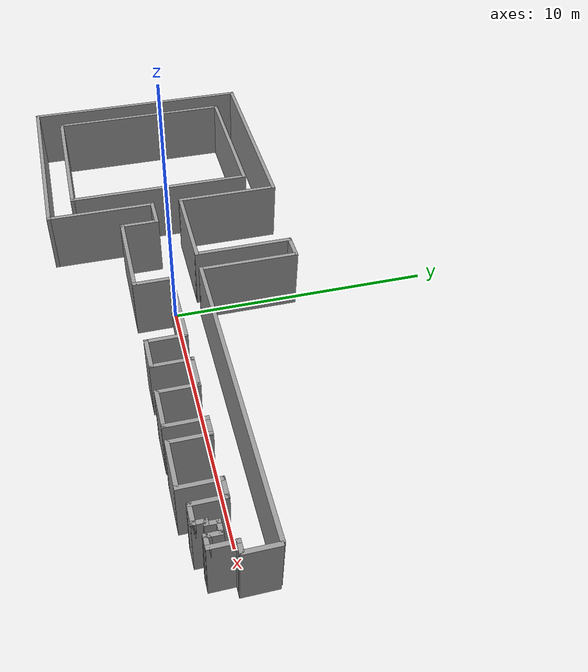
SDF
<?xml version='1.0'?>
<sdf version='1.7'>
  <model name='key'>
    <pose>-0.049318 0.329736 0 0 -0 0</pose>
    <link name='Wall_0'>
      <collision name='Wall_0_Collision'>
        <geometry>
          <box>
            <size>5.75 0.15 2.5</size>
          </box>
        </geometry>
        <pose>0 0 1.25 0 -0 0</pose>
      </collision>
      <visual name='Wall_0_Visual'>
        <pose>0 0 1.25 0 -0 0</pose>
        <geometry>
          <box>
            <size>5.75 0.15 2.5</size>
          </box>
        </geometry>
        <material>
          <script>
            <uri>file://media/materials/scripts/gazebo.material</uri>
            <name>Gazebo/Grey</name>
          </script>
          <ambient>1 1 1 1</ambient>
        </material>
        <meta>
          <layer>0</layer>
        </meta>
      </visual>
      <pose>-7.69068 -3.53974 0 0 -0 3.14159</pose>
    </link>
    <link name='Wall_1'>
      <collision name='Wall_1_Collision'>
        <geometry>
          <box>
            <size>7.25 0.15 2.5</size>
          </box>
        </geometry>
        <pose>0 0 1.25 0 -0 0</pose>
      </collision>
      <visual name='Wall_1_Visual'>
        <pose>0 0 1.25 0 -0 0</pose>
        <geometry>
          <box>
            <size>7.25 0.15 2.5</size>
          </box>
        </geometry>
        <material>
          <script>
            <uri>file://media/materials/scripts/gazebo.material</uri>
            <name>Gazebo/Grey</name>
          </script>
          <ambient>1 1 1 1</ambient>
        </material>
        <meta>
          <layer>0</layer>
        </meta>
      </visual>
      <pose>-10.4907 0.010264 0 0 -0 1.5708</pose>
    </link>
    <link name='Wall_10'>
      <collision name='Wall_10_Collision'>
        <geometry>
          <box>
            <size>4 0.15 2.5</size>
          </box>
        </geometry>
        <pose>0 0 1.25 0 -0 0</pose>
      </collision>
      <visual name='Wall_10_Visual'>
        <pose>0 0 1.25 0 -0 0</pose>
        <geometry>
          <box>
            <size>4 0.15 2.5</size>
          </box>
        </geometry>
        <material>
          <script>
            <uri>file://media/materials/scripts/gazebo.material</uri>
            <name>Gazebo/Grey</name>
          </script>
          <ambient>1 1 1 1</ambient>
        </material>
        <meta>
          <layer>0</layer>
        </meta>
      </visual>
      <pose>-3.9 2.625 0 0 -0 -1.5708</pose>
    </link>
    <link name='Wall_11'>
      <collision name='Wall_11_Collision'>
        <geometry>
          <box>
            <size>3.5 0.15 2.5</size>
          </box>
        </geometry>
        <pose>0 0 1.25 0 -0 0</pose>
      </collision>
      <visual name='Wall_11_Visual'>
        <pose>0 0 1.25 0 -0 0</pose>
        <geometry>
          <box>
            <size>3.5 0.15 2.5</size>
          </box>
        </geometry>
        <material>
          <script>
            <uri>file://media/materials/scripts/gazebo.material</uri>
            <name>Gazebo/Grey</name>
          </script>
          <ambient>1 1 1 1</ambient>
        </material>
        <meta>
          <layer>0</layer>
        </meta>
      </visual>
      <pose>-2.225 0.7 0 0 -0 0</pose>
    </link>
    <link name='Wall_12'>
      <collision name='Wall_12_Collision'>
        <geometry>
          <box>
            <size>3.75 0.15 2.5</size>
          </box>
        </geometry>
        <pose>0 0 1.25 0 -0 0</pose>
      </collision>
      <visual name='Wall_12_Visual'>
        <pose>0 0 1.25 0 -0 0</pose>
        <geometry>
          <box>
            <size>3.75 0.15 2.5</size>
          </box>
        </geometry>
        <material>
          <script>
            <uri>file://media/materials/scripts/gazebo.material</uri>
            <name>Gazebo/Grey</name>
          </script>
          <ambient>1 1 1 1</ambient>
        </material>
        <meta>
          <layer>0</layer>
        </meta>
      </visual>
      <pose>-0.55 2.5 0 0 -0 1.5708</pose>
    </link>
    <link name='Wall_15'>
      <collision name='Wall_15_Collision'>
        <geometry>
          <box>
            <size>1 0.15 2.5</size>
          </box>
        </geometry>
        <pose>0 0 1.25 0 -0 0</pose>
      </collision>
      <visual name='Wall_15_Visual'>
        <pose>0 0 1.25 0 -0 0</pose>
        <geometry>
          <box>
            <size>1 0.15 2.5</size>
          </box>
        </geometry>
        <material>
          <script>
            <uri>file://media/materials/scripts/gazebo.material</uri>
            <name>Gazebo/Grey</name>
          </script>
          <ambient>1 1 1 1</ambient>
        </material>
        <meta>
          <layer>0</layer>
        </meta>
      </visual>
      <pose>-0.125 4.3 0 0 -0 0</pose>
    </link>
    <link name='Wall_16'>
      <collision name='Wall_16_Collision'>
        <geometry>
          <box>
            <size>3.75 0.15 2.5</size>
          </box>
        </geometry>
        <pose>0 0 1.25 0 -0 0</pose>
      </collision>
      <visual name='Wall_16_Visual'>
        <pose>0 0 1.25 0 -0 0</pose>
        <geometry>
          <box>
            <size>3.75 0.15 2.5</size>
          </box>
        </geometry>
        <material>
          <script>
            <uri>file://media/materials/scripts/gazebo.material</uri>
            <name>Gazebo/Grey</name>
          </script>
          <ambient>1 1 1 1</ambient>
        </material>
        <meta>
          <layer>0</layer>
        </meta>
      </visual>
      <pose>0.3 2.5 0 0 -0 -1.5708</pose>
    </link>
    <link name='Wall_17'>
      <collision name='Wall_17_Collision'>
        <geometry>
          <box>
            <size>11.25 0.15 2.5</size>
          </box>
        </geometry>
        <pose>0 0 1.25 0 -0 0</pose>
      </collision>
      <visual name='Wall_17_Visual'>
        <pose>0 0 1.25 0 -0 0</pose>
        <geometry>
          <box>
            <size>11.25 0.15 2.5</size>
          </box>
        </geometry>
        <material>
          <script>
            <uri>file://media/materials/scripts/gazebo.material</uri>
            <name>Gazebo/Grey</name>
          </script>
          <ambient>1 1 1 1</ambient>
        </material>
        <meta>
          <layer>0</layer>
        </meta>
      </visual>
      <pose>5.85 0.7 0 0 -0 0</pose>
    </link>
    <link name='Wall_19'>
      <collision name='Wall_19_Collision'>
        <geometry>
          <box>
            <size>1.25 0.15 2.5</size>
          </box>
        </geometry>
        <pose>0 0 1.25 0 -0 0</pose>
      </collision>
      <visual name='Wall_19_Visual'>
        <pose>0 0 1.25 0 -0 0</pose>
        <geometry>
          <box>
            <size>1.25 0.15 2.5</size>
          </box>
        </geometry>
        <material>
          <script>
            <uri>file://media/materials/scripts/gazebo.material</uri>
            <name>Gazebo/Grey</name>
          </script>
          <ambient>1 1 1 1</ambient>
        </material>
        <meta>
          <layer>0</layer>
        </meta>
      </visual>
      <pose>-3.35 -0.45 0 0 -0 0</pose>
    </link>
    <link name='Wall_2'>
      <collision name='Wall_2_Collision'>
        <geometry>
          <box>
            <size>5.75 0.15 2.5</size>
          </box>
        </geometry>
        <pose>0 0 1.25 0 -0 0</pose>
      </collision>
      <visual name='Wall_2_Visual'>
        <pose>0 0 1.25 0 -0 0</pose>
        <geometry>
          <box>
            <size>5.75 0.15 2.5</size>
          </box>
        </geometry>
        <material>
          <script>
            <uri>file://media/materials/scripts/gazebo.material</uri>
            <name>Gazebo/Grey</name>
          </script>
          <ambient>1 1 1 1</ambient>
        </material>
        <meta>
          <layer>0</layer>
        </meta>
      </visual>
      <pose>-7.69068 3.56026 0 0 -0 0</pose>
    </link>
    <link name='Wall_22'>
      <collision name='Wall_22_Collision'>
        <geometry>
          <box>
            <size>1.5 0.15 2.5</size>
          </box>
        </geometry>
        <pose>0 0 1.25 0 -0 0</pose>
      </collision>
      <visual name='Wall_22_Visual'>
        <pose>0 0 1.25 0 -0 0</pose>
        <geometry>
          <box>
            <size>1.5 0.15 2.5</size>
          </box>
        </geometry>
        <material>
          <script>
            <uri>file://media/materials/scripts/gazebo.material</uri>
            <name>Gazebo/Grey</name>
          </script>
          <ambient>1 1 1 1</ambient>
        </material>
        <meta>
          <layer>0</layer>
        </meta>
      </visual>
      <pose>-2.8 -1.125 0 0 -0 -1.5708</pose>
    </link>
    <link name='Wall_23'>
      <collision name='Wall_23_Collision'>
        <geometry>
          <box>
            <size>3.5 0.15 2.5</size>
          </box>
        </geometry>
        <pose>0 0 1.25 0 -0 0</pose>
      </collision>
      <visual name='Wall_23_Visual'>
        <pose>0 0 1.25 0 -0 0</pose>
        <geometry>
          <box>
            <size>3.5 0.15 2.5</size>
          </box>
        </geometry>
        <material>
          <script>
            <uri>file://media/materials/scripts/gazebo.material</uri>
            <name>Gazebo/Grey</name>
          </script>
          <ambient>1 1 1 1</ambient>
        </material>
        <meta>
          <layer>0</layer>
        </meta>
      </visual>
      <pose>-1.125 -1.8 0 0 -0 0</pose>
    </link>
    <link name='Wall_24'>
      <collision name='Wall_24_Collision'>
        <geometry>
          <box>
            <size>1.5 0.15 2.5</size>
          </box>
        </geometry>
        <pose>0 0 1.25 0 -0 0</pose>
      </collision>
      <visual name='Wall_24_Visual'>
        <pose>0 0 1.25 0 -0 0</pose>
        <geometry>
          <box>
            <size>1.5 0.15 2.5</size>
          </box>
        </geometry>
        <material>
          <script>
            <uri>file://media/materials/scripts/gazebo.material</uri>
            <name>Gazebo/Grey</name>
          </script>
          <ambient>1 1 1 1</ambient>
        </material>
        <meta>
          <layer>0</layer>
        </meta>
      </visual>
      <pose>0.55 -1.125 0 0 -0 1.5708</pose>
    </link>
    <link name='Wall_25'>
      <collision name='Wall_25_Collision'>
        <geometry>
          <box>
            <size>3 0.15 2.5</size>
          </box>
        </geometry>
        <pose>0 0 1.25 0 -0 0</pose>
      </collision>
      <visual name='Wall_25_Visual'>
        <pose>0 0 1.25 0 -0 0</pose>
        <geometry>
          <box>
            <size>3 0.15 2.5</size>
          </box>
        </geometry>
        <material>
          <script>
            <uri>file://media/materials/scripts/gazebo.material</uri>
            <name>Gazebo/Grey</name>
          </script>
          <ambient>1 1 1 1</ambient>
        </material>
        <meta>
          <layer>0</layer>
        </meta>
      </visual>
      <pose>1.975 -0.45 0 0 -0 0</pose>
    </link>
    <link name='Wall_26'>
      <collision name='Wall_26_Collision'>
        <geometry>
          <box>
            <size>1.5 0.15 2.5</size>
          </box>
        </geometry>
        <pose>0 0 1.25 0 -0 0</pose>
      </collision>
      <visual name='Wall_26_Visual'>
        <pose>0 0 1.25 0 -0 0</pose>
        <geometry>
          <box>
            <size>1.5 0.15 2.5</size>
          </box>
        </geometry>
        <material>
          <script>
            <uri>file://media/materials/scripts/gazebo.material</uri>
            <name>Gazebo/Grey</name>
          </script>
          <ambient>1 1 1 1</ambient>
        </material>
        <meta>
          <layer>0</layer>
        </meta>
      </visual>
      <pose>3.4 -1.125 0 0 -0 -1.5708</pose>
    </link>
    <link name='Wall_27'>
      <collision name='Wall_27_Collision'>
        <geometry>
          <box>
            <size>1.25 0.15 2.5</size>
          </box>
        </geometry>
        <pose>0 0 1.25 0 -0 0</pose>
      </collision>
      <visual name='Wall_27_Visual'>
        <pose>0 0 1.25 0 -0 0</pose>
        <geometry>
          <box>
            <size>1.25 0.15 2.5</size>
          </box>
        </geometry>
        <material>
          <script>
            <uri>file://media/materials/scripts/gazebo.material</uri>
            <name>Gazebo/Grey</name>
          </script>
          <ambient>1 1 1 1</ambient>
        </material>
        <meta>
          <layer>0</layer>
        </meta>
      </visual>
      <pose>3.95 -1.8 0 0 -0 0</pose>
    </link>
    <link name='Wall_28'>
      <collision name='Wall_28_Collision'>
        <geometry>
          <box>
            <size>1.5 0.15 2.5</size>
          </box>
        </geometry>
        <pose>0 0 1.25 0 -0 0</pose>
      </collision>
      <visual name='Wall_28_Visual'>
        <pose>0 0 1.25 0 -0 0</pose>
        <geometry>
          <box>
            <size>1.5 0.15 2.5</size>
          </box>
        </geometry>
        <material>
          <script>
            <uri>file://media/materials/scripts/gazebo.material</uri>
            <name>Gazebo/Grey</name>
          </script>
          <ambient>1 1 1 1</ambient>
        </material>
        <meta>
          <layer>0</layer>
        </meta>
      </visual>
      <pose>4.5 -1.125 0 0 -0 1.5708</pose>
    </link>
    <link name='Wall_29'>
      <collision name='Wall_29_Collision'>
        <geometry>
          <box>
            <size>1.25 0.15 2.5</size>
          </box>
        </geometry>
        <pose>0 0 1.25 0 -0 0</pose>
      </collision>
      <visual name='Wall_29_Visual'>
        <pose>0 0 1.25 0 -0 0</pose>
        <geometry>
          <box>
            <size>1.25 0.15 2.5</size>
          </box>
        </geometry>
        <material>
          <script>
            <uri>file://media/materials/scripts/gazebo.material</uri>
            <name>Gazebo/Grey</name>
          </script>
          <ambient>1 1 1 1</ambient>
        </material>
        <meta>
          <layer>0</layer>
        </meta>
      </visual>
      <pose>5.05 -0.45 0 0 -0 0</pose>
    </link>
    <link name='Wall_3'>
      <collision name='Wall_3_Collision'>
        <geometry>
          <box>
            <size>7.25 0.15 2.5</size>
          </box>
        </geometry>
        <pose>0 0 1.25 0 -0 0</pose>
      </collision>
      <visual name='Wall_3_Visual'>
        <pose>0 0 1.25 0 -0 0</pose>
        <geometry>
          <box>
            <size>7.25 0.15 2.5</size>
          </box>
        </geometry>
        <material>
          <script>
            <uri>file://media/materials/scripts/gazebo.material</uri>
            <name>Gazebo/Grey</name>
          </script>
          <ambient>1 1 1 1</ambient>
        </material>
        <meta>
          <layer>0</layer>
        </meta>
      </visual>
      <pose>-4.89068 0.010264 0 0 -0 -1.5708</pose>
    </link>
    <link name='Wall_33'>
      <collision name='Wall_33_Collision'>
        <geometry>
          <box>
            <size>1.5 0.15 2.5</size>
          </box>
        </geometry>
        <pose>0 0 1.25 0 -0 0</pose>
      </collision>
      <visual name='Wall_33_Visual'>
        <pose>0 0 1.25 0 -0 0</pose>
        <geometry>
          <box>
            <size>1.5 0.15 2.5</size>
          </box>
        </geometry>
        <material>
          <script>
            <uri>file://media/materials/scripts/gazebo.material</uri>
            <name>Gazebo/Grey</name>
          </script>
          <ambient>1 1 1 1</ambient>
        </material>
        <meta>
          <layer>0</layer>
        </meta>
      </visual>
      <pose>5.6 -1.125 0 0 -0 -1.5708</pose>
    </link>
    <link name='Wall_34'>
      <collision name='Wall_34_Collision'>
        <geometry>
          <box>
            <size>1.5 0.15 2.5</size>
          </box>
        </geometry>
        <pose>0 0 1.25 0 -0 0</pose>
      </collision>
      <visual name='Wall_34_Visual'>
        <pose>0 0 1.25 0 -0 0</pose>
        <geometry>
          <box>
            <size>1.5 0.15 2.5</size>
          </box>
        </geometry>
        <material>
          <script>
            <uri>file://media/materials/scripts/gazebo.material</uri>
            <name>Gazebo/Grey</name>
          </script>
          <ambient>1 1 1 1</ambient>
        </material>
        <meta>
          <layer>0</layer>
        </meta>
      </visual>
      <pose>6.275 -1.8 0 0 -0 0</pose>
    </link>
    <link name='Wall_35'>
      <collision name='Wall_35_Collision'>
        <geometry>
          <box>
            <size>1.5 0.15 2.5</size>
          </box>
        </geometry>
        <pose>0 0 1.25 0 -0 0</pose>
      </collision>
      <visual name='Wall_35_Visual'>
        <pose>0 0 1.25 0 -0 0</pose>
        <geometry>
          <box>
            <size>1.5 0.15 2.5</size>
          </box>
        </geometry>
        <material>
          <script>
            <uri>file://media/materials/scripts/gazebo.material</uri>
            <name>Gazebo/Grey</name>
          </script>
          <ambient>1 1 1 1</ambient>
        </material>
        <meta>
          <layer>0</layer>
        </meta>
      </visual>
      <pose>6.95 -1.125 0 0 -0 1.5708</pose>
    </link>
    <link name='Wall_36'>
      <collision name='Wall_36_Collision'>
        <geometry>
          <box>
            <size>0.75 0.15 2.5</size>
          </box>
        </geometry>
        <pose>0 0 1.25 0 -0 0</pose>
      </collision>
      <visual name='Wall_36_Visual'>
        <pose>0 0 1.25 0 -0 0</pose>
        <geometry>
          <box>
            <size>0.75 0.15 2.5</size>
          </box>
        </geometry>
        <material>
          <script>
            <uri>file://media/materials/scripts/gazebo.material</uri>
            <name>Gazebo/Grey</name>
          </script>
          <ambient>1 1 1 1</ambient>
        </material>
        <meta>
          <layer>0</layer>
        </meta>
      </visual>
      <pose>7.25 -0.45 0 0 -0 0</pose>
    </link>
    <link name='Wall_37'>
      <collision name='Wall_37_Collision'>
        <geometry>
          <box>
            <size>1.5 0.15 2.5</size>
          </box>
        </geometry>
        <pose>0 0 1.25 0 -0 0</pose>
      </collision>
      <visual name='Wall_37_Visual'>
        <pose>0 0 1.25 0 -0 0</pose>
        <geometry>
          <box>
            <size>1.5 0.15 2.5</size>
          </box>
        </geometry>
        <material>
          <script>
            <uri>file://media/materials/scripts/gazebo.material</uri>
            <name>Gazebo/Grey</name>
          </script>
          <ambient>1 1 1 1</ambient>
        </material>
        <meta>
          <layer>0</layer>
        </meta>
      </visual>
      <pose>7.55 -1.125 0 0 -0 -1.5708</pose>
    </link>
    <link name='Wall_38'>
      <collision name='Wall_38_Collision'>
        <geometry>
          <box>
            <size>1.75 0.15 2.5</size>
          </box>
        </geometry>
        <pose>0 0 1.25 0 -0 0</pose>
      </collision>
      <visual name='Wall_38_Visual'>
        <pose>0 0 1.25 0 -0 0</pose>
        <geometry>
          <box>
            <size>1.75 0.15 2.5</size>
          </box>
        </geometry>
        <material>
          <script>
            <uri>file://media/materials/scripts/gazebo.material</uri>
            <name>Gazebo/Grey</name>
          </script>
          <ambient>1 1 1 1</ambient>
        </material>
        <meta>
          <layer>0</layer>
        </meta>
      </visual>
      <pose>8.35 -1.8 0 0 -0 0</pose>
    </link>
    <link name='Wall_39'>
      <collision name='Wall_39_Collision'>
        <geometry>
          <box>
            <size>1.5 0.15 2.5</size>
          </box>
        </geometry>
        <pose>0 0 1.25 0 -0 0</pose>
      </collision>
      <visual name='Wall_39_Visual'>
        <pose>0 0 1.25 0 -0 0</pose>
        <geometry>
          <box>
            <size>1.5 0.15 2.5</size>
          </box>
        </geometry>
        <material>
          <script>
            <uri>file://media/materials/scripts/gazebo.material</uri>
            <name>Gazebo/Grey</name>
          </script>
          <ambient>1 1 1 1</ambient>
        </material>
        <meta>
          <layer>0</layer>
        </meta>
      </visual>
      <pose>9.15 -1.125 0 0 -0 1.5708</pose>
    </link>
    <link name='Wall_40'>
      <collision name='Wall_40_Collision'>
        <geometry>
          <box>
            <size>0.75 0.15 2.5</size>
          </box>
        </geometry>
        <pose>0 0 1.25 0 -0 0</pose>
      </collision>
      <visual name='Wall_40_Visual'>
        <pose>0 0 1.25 0 -0 0</pose>
        <geometry>
          <box>
            <size>0.75 0.15 2.5</size>
          </box>
        </geometry>
        <material>
          <script>
            <uri>file://media/materials/scripts/gazebo.material</uri>
            <name>Gazebo/Grey</name>
          </script>
          <ambient>1 1 1 1</ambient>
        </material>
        <meta>
          <layer>0</layer>
        </meta>
      </visual>
      <pose>9.45 -0.45 0 0 -0 0</pose>
    </link>
    <link name='Wall_41'>
      <collision name='Wall_41_Collision'>
        <geometry>
          <box>
            <size>1.25 0.15 2.5</size>
          </box>
        </geometry>
        <pose>0 0 1.25 0 -0 0</pose>
      </collision>
      <visual name='Wall_41_Visual'>
        <pose>0 0 1.25 0 -0 0</pose>
        <geometry>
          <box>
            <size>1.25 0.15 2.5</size>
          </box>
        </geometry>
        <material>
          <script>
            <uri>file://media/materials/scripts/gazebo.material</uri>
            <name>Gazebo/Grey</name>
          </script>
          <ambient>1 1 1 1</ambient>
        </material>
        <meta>
          <layer>0</layer>
        </meta>
      </visual>
      <pose>9.75 -1 0 0 -0 -1.5708</pose>
    </link>
    <link name='Wall_42'>
      <collision name='Wall_42_Collision'>
        <geometry>
          <box>
            <size>0.75 0.15 2.5</size>
          </box>
        </geometry>
        <pose>0 0 1.25 0 -0 0</pose>
      </collision>
      <visual name='Wall_42_Visual'>
        <pose>0 0 1.25 0 -0 0</pose>
        <geometry>
          <box>
            <size>0.75 0.15 2.5</size>
          </box>
        </geometry>
        <material>
          <script>
            <uri>file://media/materials/scripts/gazebo.material</uri>
            <name>Gazebo/Grey</name>
          </script>
          <ambient>1 1 1 1</ambient>
        </material>
        <meta>
          <layer>0</layer>
        </meta>
      </visual>
      <pose>10.05 -1.55 0 0 -0 0</pose>
    </link>
    <link name='Wall_43'>
      <collision name='Wall_43_Collision'>
        <geometry>
          <box>
            <size>0.5 0.15 2.5</size>
          </box>
        </geometry>
        <pose>0 0 1.25 0 -0 0</pose>
      </collision>
      <visual name='Wall_43_Visual'>
        <pose>0 0 1.25 0 -0 0</pose>
        <geometry>
          <box>
            <size>0.5 0.15 2.5</size>
          </box>
        </geometry>
        <material>
          <script>
            <uri>file://media/materials/scripts/gazebo.material</uri>
            <name>Gazebo/Grey</name>
          </script>
          <ambient>1 1 1 1</ambient>
        </material>
        <meta>
          <layer>0</layer>
        </meta>
      </visual>
      <pose>10.35 -1.375 0 0 -0 1.5708</pose>
    </link>
    <link name='Wall_44'>
      <collision name='Wall_44_Collision'>
        <geometry>
          <box>
            <size>0.25 0.15 2.5</size>
          </box>
        </geometry>
        <pose>0 0 1.25 0 -0 0</pose>
      </collision>
      <visual name='Wall_44_Visual'>
        <pose>0 0 1.25 0 -0 0</pose>
        <geometry>
          <box>
            <size>0.25 0.15 2.5</size>
          </box>
        </geometry>
        <material>
          <script>
            <uri>file://media/materials/scripts/gazebo.material</uri>
            <name>Gazebo/Grey</name>
          </script>
          <ambient>1 1 1 1</ambient>
        </material>
        <meta>
          <layer>0</layer>
        </meta>
      </visual>
      <pose>10.4 -1.2 0 0 -0 0</pose>
    </link>
    <link name='Wall_45'>
      <collision name='Wall_45_Collision'>
        <geometry>
          <box>
            <size>0.5 0.15 2.5</size>
          </box>
        </geometry>
        <pose>0 0 1.25 0 -0 0</pose>
      </collision>
      <visual name='Wall_45_Visual'>
        <pose>0 0 1.25 0 -0 0</pose>
        <geometry>
          <box>
            <size>0.5 0.15 2.5</size>
          </box>
        </geometry>
        <material>
          <script>
            <uri>file://media/materials/scripts/gazebo.material</uri>
            <name>Gazebo/Grey</name>
          </script>
          <ambient>1 1 1 1</ambient>
        </material>
        <meta>
          <layer>0</layer>
        </meta>
      </visual>
      <pose>10.45 -1.025 0 0 -0 1.5708</pose>
    </link>
    <link name='Wall_46'>
      <collision name='Wall_46_Collision'>
        <geometry>
          <box>
            <size>0.5 0.15 2.5</size>
          </box>
        </geometry>
        <pose>0 0 1.25 0 -0 0</pose>
      </collision>
      <visual name='Wall_46_Visual'>
        <pose>0 0 1.25 0 -0 0</pose>
        <geometry>
          <box>
            <size>0.5 0.15 2.5</size>
          </box>
        </geometry>
        <material>
          <script>
            <uri>file://media/materials/scripts/gazebo.material</uri>
            <name>Gazebo/Grey</name>
          </script>
          <ambient>1 1 1 1</ambient>
        </material>
        <meta>
          <layer>0</layer>
        </meta>
      </visual>
      <pose>10.625 -0.85 0 0 -0 0</pose>
    </link>
    <link name='Wall_47'>
      <collision name='Wall_47_Collision'>
        <geometry>
          <box>
            <size>0.5 0.15 2.5</size>
          </box>
        </geometry>
        <pose>0 0 1.25 0 -0 0</pose>
      </collision>
      <visual name='Wall_47_Visual'>
        <pose>0 0 1.25 0 -0 0</pose>
        <geometry>
          <box>
            <size>0.5 0.15 2.5</size>
          </box>
        </geometry>
        <material>
          <script>
            <uri>file://media/materials/scripts/gazebo.material</uri>
            <name>Gazebo/Grey</name>
          </script>
          <ambient>1 1 1 1</ambient>
        </material>
        <meta>
          <layer>0</layer>
        </meta>
      </visual>
      <pose>10.8 -1.025 0 0 -0 -1.5708</pose>
    </link>
    <link name='Wall_48'>
      <collision name='Wall_48_Collision'>
        <geometry>
          <box>
            <size>0.25 0.15 2.5</size>
          </box>
        </geometry>
        <pose>0 0 1.25 0 -0 0</pose>
      </collision>
      <visual name='Wall_48_Visual'>
        <pose>0 0 1.25 0 -0 0</pose>
        <geometry>
          <box>
            <size>0.25 0.15 2.5</size>
          </box>
        </geometry>
        <material>
          <script>
            <uri>file://media/materials/scripts/gazebo.material</uri>
            <name>Gazebo/Grey</name>
          </script>
          <ambient>1 1 1 1</ambient>
        </material>
        <meta>
          <layer>0</layer>
        </meta>
      </visual>
      <pose>10.8 -1.25 0 0 -0 -1.5708</pose>
    </link>
    <link name='Wall_54'>
      <collision name='Wall_54_Collision'>
        <geometry>
          <box>
            <size>0.5 0.15 2.5</size>
          </box>
        </geometry>
        <pose>0 0 1.25 0 -0 0</pose>
      </collision>
      <visual name='Wall_54_Visual'>
        <pose>0 0 1.25 0 -0 0</pose>
        <geometry>
          <box>
            <size>0.5 0.15 2.5</size>
          </box>
        </geometry>
        <material>
          <script>
            <uri>file://media/materials/scripts/gazebo.material</uri>
            <name>Gazebo/Grey</name>
          </script>
          <ambient>1 1 1 1</ambient>
        </material>
        <meta>
          <layer>0</layer>
        </meta>
      </visual>
      <pose>10.975 -1.3 0 0 -0 0</pose>
    </link>
    <link name='Wall_55'>
      <collision name='Wall_55_Collision'>
        <geometry>
          <box>
            <size>1 0.15 2.5</size>
          </box>
        </geometry>
        <pose>0 0 1.25 0 -0 0</pose>
      </collision>
      <visual name='Wall_55_Visual'>
        <pose>0 0 1.25 0 -0 0</pose>
        <geometry>
          <box>
            <size>1 0.15 2.5</size>
          </box>
        </geometry>
        <material>
          <script>
            <uri>file://media/materials/scripts/gazebo.material</uri>
            <name>Gazebo/Grey</name>
          </script>
          <ambient>1 1 1 1</ambient>
        </material>
        <meta>
          <layer>0</layer>
        </meta>
      </visual>
      <pose>11.15 -0.875 0 0 -0 1.5708</pose>
    </link>
    <link name='Wall_56'>
      <collision name='Wall_56_Collision'>
        <geometry>
          <box>
            <size>0.5 0.15 2.5</size>
          </box>
        </geometry>
        <pose>0 0 1.25 0 -0 0</pose>
      </collision>
      <visual name='Wall_56_Visual'>
        <pose>0 0 1.25 0 -0 0</pose>
        <geometry>
          <box>
            <size>0.5 0.15 2.5</size>
          </box>
        </geometry>
        <material>
          <script>
            <uri>file://media/materials/scripts/gazebo.material</uri>
            <name>Gazebo/Grey</name>
          </script>
          <ambient>1 1 1 1</ambient>
        </material>
        <meta>
          <layer>0</layer>
        </meta>
      </visual>
      <pose>11.325 -0.45 0 0 -0 0</pose>
    </link>
    <link name='Wall_57'>
      <collision name='Wall_57_Collision'>
        <geometry>
          <box>
            <size>1.25 0.15 2.5</size>
          </box>
        </geometry>
        <pose>0 0 1.25 0 -0 0</pose>
      </collision>
      <visual name='Wall_57_Visual'>
        <pose>0 0 1.25 0 -0 0</pose>
        <geometry>
          <box>
            <size>1.25 0.15 2.5</size>
          </box>
        </geometry>
        <material>
          <script>
            <uri>file://media/materials/scripts/gazebo.material</uri>
            <name>Gazebo/Grey</name>
          </script>
          <ambient>1 1 1 1</ambient>
        </material>
        <meta>
          <layer>0</layer>
        </meta>
      </visual>
      <pose>11.5 0.1 0 0 -0 1.5708</pose>
    </link>
    <link name='Wall_6'>
      <collision name='Wall_6_Collision'>
        <geometry>
          <box>
            <size>4.25 0.15 2.5</size>
          </box>
        </geometry>
        <pose>0 0 1.25 0 -0 0</pose>
      </collision>
      <visual name='Wall_6_Visual'>
        <pose>0 0 1.25 0 -0 0</pose>
        <geometry>
          <box>
            <size>4.25 0.15 2.5</size>
          </box>
        </geometry>
        <material>
          <script>
            <uri>file://media/materials/scripts/gazebo.material</uri>
            <name>Gazebo/Grey</name>
          </script>
          <ambient>1 1 1 1</ambient>
        </material>
        <meta>
          <layer>0</layer>
        </meta>
      </visual>
      <pose>-3.9 -2.5 0 0 -0 -1.5708</pose>
    </link>
    <link name='Wall_7'>
      <collision name='Wall_7_Collision'>
        <geometry>
          <box>
            <size>7.75 0.15 2.5</size>
          </box>
        </geometry>
        <pose>0 0 1.25 0 -0 0</pose>
      </collision>
      <visual name='Wall_7_Visual'>
        <pose>0 0 1.25 0 -0 0</pose>
        <geometry>
          <box>
            <size>7.75 0.15 2.5</size>
          </box>
        </geometry>
        <material>
          <script>
            <uri>file://media/materials/scripts/gazebo.material</uri>
            <name>Gazebo/Grey</name>
          </script>
          <ambient>1 1 1 1</ambient>
        </material>
        <meta>
          <layer>0</layer>
        </meta>
      </visual>
      <pose>-7.7 -4.55 0 0 -0 3.14159</pose>
    </link>
    <link name='Wall_8'>
      <collision name='Wall_8_Collision'>
        <geometry>
          <box>
            <size>9.25 0.15 2.5</size>
          </box>
        </geometry>
        <pose>0 0 1.25 0 -0 0</pose>
      </collision>
      <visual name='Wall_8_Visual'>
        <pose>0 0 1.25 0 -0 0</pose>
        <geometry>
          <box>
            <size>9.25 0.15 2.5</size>
          </box>
        </geometry>
        <material>
          <script>
            <uri>file://media/materials/scripts/gazebo.material</uri>
            <name>Gazebo/Grey</name>
          </script>
          <ambient>1 1 1 1</ambient>
        </material>
        <meta>
          <layer>0</layer>
        </meta>
      </visual>
      <pose>-11.5 -0 0 0 -0 1.5708</pose>
    </link>
    <link name='Wall_9'>
      <collision name='Wall_9_Collision'>
        <geometry>
          <box>
            <size>7.75 0.15 2.5</size>
          </box>
        </geometry>
        <pose>0 0 1.25 0 -0 0</pose>
      </collision>
      <visual name='Wall_9_Visual'>
        <pose>0 0 1.25 0 -0 0</pose>
        <geometry>
          <box>
            <size>7.75 0.15 2.5</size>
          </box>
        </geometry>
        <material>
          <script>
            <uri>file://media/materials/scripts/gazebo.material</uri>
            <name>Gazebo/Grey</name>
          </script>
          <ambient>1 1 1 1</ambient>
        </material>
        <meta>
          <layer>0</layer>
        </meta>
      </visual>
      <pose>-7.7 4.55 0 0 -0 0</pose>
    </link>
    <static>1</static>
  </model>
</sdf>
